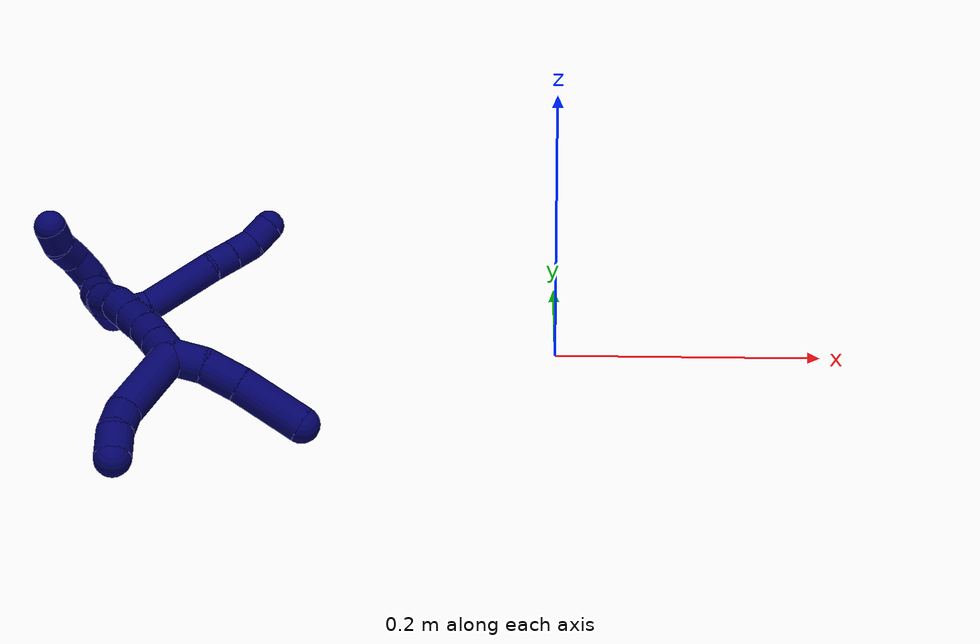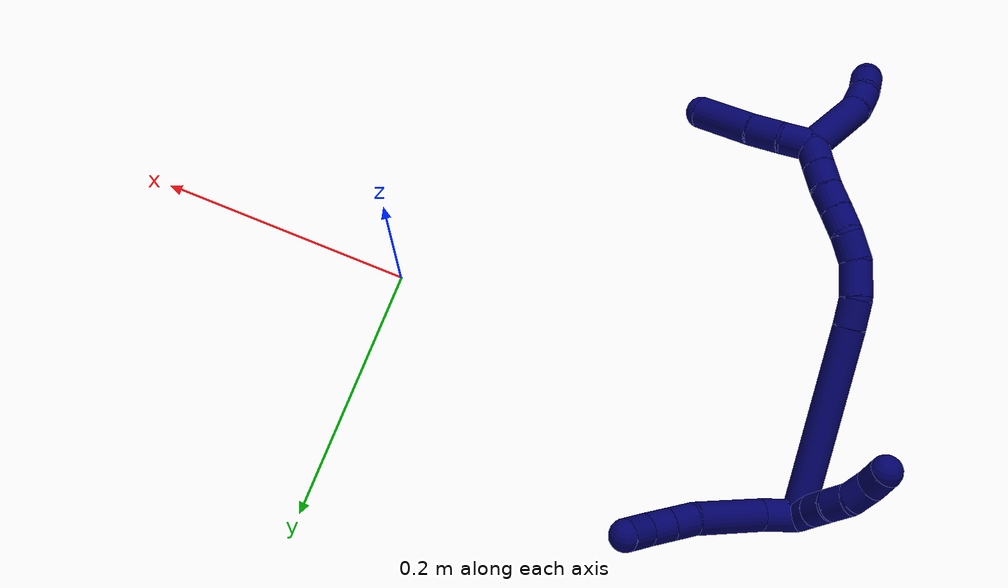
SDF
<sdf version="1.7">
 <world name="default">
  <model name="7">
   <static>0</static>
   <link name="7">
    <collision name="collision-cylinder-e_1_2_8">
     <pose>-0.014492 -0.000851 -0.00073 2.27944 -1.49358 -2.21929</pose>
     <geometry><cylinder><radius>0.0125</radius><length>0.02907</length></cylinder></geometry>
     <surface>
      <friction><ode><mu>1.16</mu><mu2>1.16</mu2><slip1>0</slip1><slip2>0</slip2></ode></friction>
      <contact><ode><kp>1e+06</kp><kd>1</kd><max_vel>0</max_vel><min_depth>0.001</min_depth></ode></contact>
     </surface>
    </collision>
    <visual name="visual-cylinder-e_1_2_8">
     <pose>-0.014492 -0.000851 -0.00073 2.27944 -1.49358 -2.21929</pose>
     <geometry><cylinder><radius>0.0125</radius><length>0.02907</length></cylinder></geometry>
     <material><ambient>0.003922 0 0.403922 1</ambient></material>
    </visual>
    <collision name="collision-cylinder-e_2_8_9">
     <pose>-0.057497 0.003812 -0.008296 -2.46283 -1.27198 2.24954</pose>
     <geometry><cylinder><radius>0.0125</radius><length>0.059672</length></cylinder></geometry>
     <surface>
      <friction><ode><mu>1.16</mu><mu2>1.16</mu2><slip1>0</slip1><slip2>0</slip2></ode></friction>
      <contact><ode><kp>1e+06</kp><kd>1</kd><max_vel>0</max_vel><min_depth>0.001</min_depth></ode></contact>
     </surface>
    </collision>
    <visual name="visual-cylinder-e_2_8_9">
     <pose>-0.057497 0.003812 -0.008296 -2.46283 -1.27198 2.24954</pose>
     <geometry><cylinder><radius>0.0125</radius><length>0.059672</length></cylinder></geometry>
     <material><ambient>0.003922 0 0.403922 1</ambient></material>
    </visual>
    <collision name="collision-cylinder-e_3_9_10">
     <pose>-0.095713 0.011694 -0.015706 -1.80824 -1.3248 1.56199</pose>
     <geometry><cylinder><radius>0.0125</radius><length>0.020006</length></cylinder></geometry>
     <surface>
      <friction><ode><mu>1.16</mu><mu2>1.16</mu2><slip1>0</slip1><slip2>0</slip2></ode></friction>
      <contact><ode><kp>1e+06</kp><kd>1</kd><max_vel>0</max_vel><min_depth>0.001</min_depth></ode></contact>
     </surface>
    </collision>
    <visual name="visual-cylinder-e_3_9_10">
     <pose>-0.095713 0.011694 -0.015706 -1.80824 -1.3248 1.56199</pose>
     <geometry><cylinder><radius>0.0125</radius><length>0.020006</length></cylinder></geometry>
     <material><ambient>0.003922 0 0.403922 1</ambient></material>
    </visual>
    <collision name="collision-cylinder-e_4_10_11">
     <pose>-0.115182 0.016551 -0.017011 -1.85705 -1.31114 1.59841</pose>
     <geometry><cylinder><radius>0.0125</radius><length>0.020212</length></cylinder></geometry>
     <surface>
      <friction><ode><mu>1.16</mu><mu2>1.16</mu2><slip1>0</slip1><slip2>0</slip2></ode></friction>
      <contact><ode><kp>1e+06</kp><kd>1</kd><max_vel>0</max_vel><min_depth>0.001</min_depth></ode></contact>
     </surface>
    </collision>
    <visual name="visual-cylinder-e_4_10_11">
     <pose>-0.115182 0.016551 -0.017011 -1.85705 -1.31114 1.59841</pose>
     <geometry><cylinder><radius>0.0125</radius><length>0.020212</length></cylinder></geometry>
     <material><ambient>0.003922 0 0.403922 1</ambient></material>
    </visual>
    <collision name="collision-cylinder-e_5_11_6">
     <pose>-0.134025 0.023433 -0.020744 -2.16991 -1.04059 1.6523</pose>
     <geometry><cylinder><radius>0.0125</radius><length>0.02104</length></cylinder></geometry>
     <surface>
      <friction><ode><mu>1.16</mu><mu2>1.16</mu2><slip1>0</slip1><slip2>0</slip2></ode></friction>
      <contact><ode><kp>1e+06</kp><kd>1</kd><max_vel>0</max_vel><min_depth>0.001</min_depth></ode></contact>
     </surface>
    </collision>
    <visual name="visual-cylinder-e_5_11_6">
     <pose>-0.134025 0.023433 -0.020744 -2.16991 -1.04059 1.6523</pose>
     <geometry><cylinder><radius>0.0125</radius><length>0.02104</length></cylinder></geometry>
     <material><ambient>0.003922 0 0.403922 1</ambient></material>
    </visual>
    <collision name="collision-cylinder-e_1_2_12">
     <pose>0.002987 0.005094 -0.00807 -2.57857 0.303341 -0.972413</pose>
     <geometry><cylinder><radius>0.0125</radius><length>0.02</length></cylinder></geometry>
     <surface>
      <friction><ode><mu>1.16</mu><mu2>1.16</mu2><slip1>0</slip1><slip2>0</slip2></ode></friction>
      <contact><ode><kp>1e+06</kp><kd>1</kd><max_vel>0</max_vel><min_depth>0.001</min_depth></ode></contact>
     </surface>
    </collision>
    <visual name="visual-cylinder-e_1_2_12">
     <pose>0.002987 0.005094 -0.00807 -2.57857 0.303341 -0.972413</pose>
     <geometry><cylinder><radius>0.0125</radius><length>0.02</length></cylinder></geometry>
     <material><ambient>0.003922 0 0.403922 1</ambient></material>
    </visual>
    <collision name="collision-cylinder-e_2_12_13">
     <pose>0.009121 0.015293 -0.024143 -2.5737 0.320104 -1.01054</pose>
     <geometry><cylinder><radius>0.0125</radius><length>0.02</length></cylinder></geometry>
     <surface>
      <friction><ode><mu>1.16</mu><mu2>1.16</mu2><slip1>0</slip1><slip2>0</slip2></ode></friction>
      <contact><ode><kp>1e+06</kp><kd>1</kd><max_vel>0</max_vel><min_depth>0.001</min_depth></ode></contact>
     </surface>
    </collision>
    <visual name="visual-cylinder-e_2_12_13">
     <pose>0.009121 0.015293 -0.024143 -2.5737 0.320104 -1.01054</pose>
     <geometry><cylinder><radius>0.0125</radius><length>0.02</length></cylinder></geometry>
     <material><ambient>0.003922 0 0.403922 1</ambient></material>
    </visual>
    <collision name="collision-cylinder-e_3_13_14">
     <pose>0.017134 0.024832 -0.039673 -2.60936 0.508192 -1.52244</pose>
     <geometry><cylinder><radius>0.0125</radius><length>0.02</length></cylinder></geometry>
     <surface>
      <friction><ode><mu>1.16</mu><mu2>1.16</mu2><slip1>0</slip1><slip2>0</slip2></ode></friction>
      <contact><ode><kp>1e+06</kp><kd>1</kd><max_vel>0</max_vel><min_depth>0.001</min_depth></ode></contact>
     </surface>
    </collision>
    <visual name="visual-cylinder-e_3_13_14">
     <pose>0.017134 0.024832 -0.039673 -2.60936 0.508192 -1.52244</pose>
     <geometry><cylinder><radius>0.0125</radius><length>0.02</length></cylinder></geometry>
     <material><ambient>0.003922 0 0.403922 1</ambient></material>
    </visual>
    <collision name="collision-cylinder-e_4_14_15">
     <pose>0.027528 0.030554 -0.055433 -2.98632 0.585729 -2.63662</pose>
     <geometry><cylinder><radius>0.0125</radius><length>0.02</length></cylinder></geometry>
     <surface>
      <friction><ode><mu>1.16</mu><mu2>1.16</mu2><slip1>0</slip1><slip2>0</slip2></ode></friction>
      <contact><ode><kp>1e+06</kp><kd>1</kd><max_vel>0</max_vel><min_depth>0.001</min_depth></ode></contact>
     </surface>
    </collision>
    <visual name="visual-cylinder-e_4_14_15">
     <pose>0.027528 0.030554 -0.055433 -2.98632 0.585729 -2.63662</pose>
     <geometry><cylinder><radius>0.0125</radius><length>0.02</length></cylinder></geometry>
     <material><ambient>0.003922 0 0.403922 1</ambient></material>
    </visual>
    <collision name="collision-cylinder-e_5_15_5">
     <pose>0.035668 0.034337 -0.072991 -2.8802 0.264312 -1.58202</pose>
     <geometry><cylinder><radius>0.0125</radius><length>0.02</length></cylinder></geometry>
     <surface>
      <friction><ode><mu>1.16</mu><mu2>1.16</mu2><slip1>0</slip1><slip2>0</slip2></ode></friction>
      <contact><ode><kp>1e+06</kp><kd>1</kd><max_vel>0</max_vel><min_depth>0.001</min_depth></ode></contact>
     </surface>
    </collision>
    <visual name="visual-cylinder-e_5_15_5">
     <pose>0.035668 0.034337 -0.072991 -2.8802 0.264312 -1.58202</pose>
     <geometry><cylinder><radius>0.0125</radius><length>0.02</length></cylinder></geometry>
     <material><ambient>0.003922 0 0.403922 1</ambient></material>
    </visual>
    <collision name="collision-cylinder-e_1_2_16">
     <pose>0.018525 -0.035514 -0.062222 2.62295 0.253028 0.894126</pose>
     <geometry><cylinder><radius>0.0125</radius><length>0.147999</length></cylinder></geometry>
     <surface>
      <friction><ode><mu>1.16</mu><mu2>1.16</mu2><slip1>0</slip1><slip2>0</slip2></ode></friction>
      <contact><ode><kp>1e+06</kp><kd>1</kd><max_vel>0</max_vel><min_depth>0.001</min_depth></ode></contact>
     </surface>
    </collision>
    <visual name="visual-cylinder-e_1_2_16">
     <pose>0.018525 -0.035514 -0.062222 2.62295 0.253028 0.894126</pose>
     <geometry><cylinder><radius>0.0125</radius><length>0.147999</length></cylinder></geometry>
     <material><ambient>0.003922 0 0.403922 1</ambient></material>
    </visual>
    <collision name="collision-cylinder-e_2_16_17">
     <pose>0.039519 -0.076644 -0.133612 2.59201 0.225792 0.764728</pose>
     <geometry><cylinder><radius>0.0125</radius><length>0.022064</length></cylinder></geometry>
     <surface>
      <friction><ode><mu>1.16</mu><mu2>1.16</mu2><slip1>0</slip1><slip2>0</slip2></ode></friction>
      <contact><ode><kp>1e+06</kp><kd>1</kd><max_vel>0</max_vel><min_depth>0.001</min_depth></ode></contact>
     </surface>
    </collision>
    <visual name="visual-cylinder-e_2_16_17">
     <pose>0.039519 -0.076644 -0.133612 2.59201 0.225792 0.764728</pose>
     <geometry><cylinder><radius>0.0125</radius><length>0.022064</length></cylinder></geometry>
     <material><ambient>0.003922 0 0.403922 1</ambient></material>
    </visual>
    <collision name="collision-cylinder-e_3_17_18">
     <pose>0.043399 -0.092666 -0.151695 2.27916 0.102551 0.222169</pose>
     <geometry><cylinder><radius>0.0125</radius><length>0.027548</length></cylinder></geometry>
     <surface>
      <friction><ode><mu>1.16</mu><mu2>1.16</mu2><slip1>0</slip1><slip2>0</slip2></ode></friction>
      <contact><ode><kp>1e+06</kp><kd>1</kd><max_vel>0</max_vel><min_depth>0.001</min_depth></ode></contact>
     </surface>
    </collision>
    <visual name="visual-cylinder-e_3_17_18">
     <pose>0.043399 -0.092666 -0.151695 2.27916 0.102551 0.222169</pose>
     <geometry><cylinder><radius>0.0125</radius><length>0.027548</length></cylinder></geometry>
     <material><ambient>0.003922 0 0.403922 1</ambient></material>
    </visual>
    <collision name="collision-cylinder-e_4_18_19">
     <pose>0.042474 -0.111497 -0.167282 2.24061 -0.21392 -0.436902</pose>
     <geometry><cylinder><radius>0.0125</radius><length>0.021997</length></cylinder></geometry>
     <surface>
      <friction><ode><mu>1.16</mu><mu2>1.16</mu2><slip1>0</slip1><slip2>0</slip2></ode></friction>
      <contact><ode><kp>1e+06</kp><kd>1</kd><max_vel>0</max_vel><min_depth>0.001</min_depth></ode></contact>
     </surface>
    </collision>
    <visual name="visual-cylinder-e_4_18_19">
     <pose>0.042474 -0.111497 -0.167282 2.24061 -0.21392 -0.436902</pose>
     <geometry><cylinder><radius>0.0125</radius><length>0.021997</length></cylinder></geometry>
     <material><ambient>0.003922 0 0.403922 1</ambient></material>
    </visual>
    <collision name="collision-cylinder-e_5_19_20">
     <pose>0.038508 -0.129173 -0.177465 1.93349 -0.163382 -0.236175</pose>
     <geometry><cylinder><radius>0.0125</radius><length>0.020055</length></cylinder></geometry>
     <surface>
      <friction><ode><mu>1.16</mu><mu2>1.16</mu2><slip1>0</slip1><slip2>0</slip2></ode></friction>
      <contact><ode><kp>1e+06</kp><kd>1</kd><max_vel>0</max_vel><min_depth>0.001</min_depth></ode></contact>
     </surface>
    </collision>
    <visual name="visual-cylinder-e_5_19_20">
     <pose>0.038508 -0.129173 -0.177465 1.93349 -0.163382 -0.236175</pose>
     <geometry><cylinder><radius>0.0125</radius><length>0.020055</length></cylinder></geometry>
     <material><ambient>0.003922 0 0.403922 1</ambient></material>
    </visual>
    <collision name="collision-cylinder-e_6_20_21">
     <pose>0.034999 -0.147702 -0.184667 1.94941 -0.185886 -0.273085</pose>
     <geometry><cylinder><radius>0.0125</radius><length>0.020324</length></cylinder></geometry>
     <surface>
      <friction><ode><mu>1.16</mu><mu2>1.16</mu2><slip1>0</slip1><slip2>0</slip2></ode></friction>
      <contact><ode><kp>1e+06</kp><kd>1</kd><max_vel>0</max_vel><min_depth>0.001</min_depth></ode></contact>
     </surface>
    </collision>
    <visual name="visual-cylinder-e_6_20_21">
     <pose>0.034999 -0.147702 -0.184667 1.94941 -0.185886 -0.273085</pose>
     <geometry><cylinder><radius>0.0125</radius><length>0.020324</length></cylinder></geometry>
     <material><ambient>0.003922 0 0.403922 1</ambient></material>
    </visual>
    <collision name="collision-cylinder-e_7_21_22">
     <pose>0.032428 -0.166381 -0.191713 1.91359 -0.069335 -0.098323</pose>
     <geometry><cylinder><radius>0.0125</radius><length>0.020008</length></cylinder></geometry>
     <surface>
      <friction><ode><mu>1.16</mu><mu2>1.16</mu2><slip1>0</slip1><slip2>0</slip2></ode></friction>
      <contact><ode><kp>1e+06</kp><kd>1</kd><max_vel>0</max_vel><min_depth>0.001</min_depth></ode></contact>
     </surface>
    </collision>
    <visual name="visual-cylinder-e_7_21_22">
     <pose>0.032428 -0.166381 -0.191713 1.91359 -0.069335 -0.098323</pose>
     <geometry><cylinder><radius>0.0125</radius><length>0.020008</length></cylinder></geometry>
     <material><ambient>0.003922 0 0.403922 1</ambient></material>
    </visual>
    <collision name="collision-cylinder-e_8_22_1">
     <pose>0.031157 -0.185142 -0.198543 1.92636 -0.057835 -0.083147</pose>
     <geometry><cylinder><radius>0.0125</radius><length>0.020005</length></cylinder></geometry>
     <surface>
      <friction><ode><mu>1.16</mu><mu2>1.16</mu2><slip1>0</slip1><slip2>0</slip2></ode></friction>
      <contact><ode><kp>1e+06</kp><kd>1</kd><max_vel>0</max_vel><min_depth>0.001</min_depth></ode></contact>
     </surface>
    </collision>
    <visual name="visual-cylinder-e_8_22_1">
     <pose>0.031157 -0.185142 -0.198543 1.92636 -0.057835 -0.083147</pose>
     <geometry><cylinder><radius>0.0125</radius><length>0.020005</length></cylinder></geometry>
     <material><ambient>0.003922 0 0.403922 1</ambient></material>
    </visual>
    <collision name="collision-cylinder-e_1_1_23">
     <pose>0.053686 -0.212818 -0.2055 1.75856 0.891898 1.04736</pose>
     <geometry><cylinder><radius>0.0125</radius><length>0.05938</length></cylinder></geometry>
     <surface>
      <friction><ode><mu>1.16</mu><mu2>1.16</mu2><slip1>0</slip1><slip2>0</slip2></ode></friction>
      <contact><ode><kp>1e+06</kp><kd>1</kd><max_vel>0</max_vel><min_depth>0.001</min_depth></ode></contact>
     </surface>
    </collision>
    <visual name="visual-cylinder-e_1_1_23">
     <pose>0.053686 -0.212818 -0.2055 1.75856 0.891898 1.04736</pose>
     <geometry><cylinder><radius>0.0125</radius><length>0.05938</length></cylinder></geometry>
     <material><ambient>0.003922 0 0.403922 1</ambient></material>
    </visual>
    <collision name="collision-cylinder-e_2_23_24">
     <pose>0.082436 -0.239276 -0.211296 1.84797 0.588041 0.762661</pose>
     <geometry><cylinder><radius>0.0125</radius><length>0.020346</length></cylinder></geometry>
     <surface>
      <friction><ode><mu>1.16</mu><mu2>1.16</mu2><slip1>0</slip1><slip2>0</slip2></ode></friction>
      <contact><ode><kp>1e+06</kp><kd>1</kd><max_vel>0</max_vel><min_depth>0.001</min_depth></ode></contact>
     </surface>
    </collision>
    <visual name="visual-cylinder-e_2_23_24">
     <pose>0.082436 -0.239276 -0.211296 1.84797 0.588041 0.762661</pose>
     <geometry><cylinder><radius>0.0125</radius><length>0.020346</length></cylinder></geometry>
     <material><ambient>0.003922 0 0.403922 1</ambient></material>
    </visual>
    <collision name="collision-cylinder-e_3_24_4">
     <pose>0.092231 -0.256659 -0.213911 1.60312 0.422029 0.435469</pose>
     <geometry><cylinder><radius>0.0125</radius><length>0.020273</length></cylinder></geometry>
     <surface>
      <friction><ode><mu>1.16</mu><mu2>1.16</mu2><slip1>0</slip1><slip2>0</slip2></ode></friction>
      <contact><ode><kp>1e+06</kp><kd>1</kd><max_vel>0</max_vel><min_depth>0.001</min_depth></ode></contact>
     </surface>
    </collision>
    <visual name="visual-cylinder-e_3_24_4">
     <pose>0.092231 -0.256659 -0.213911 1.60312 0.422029 0.435469</pose>
     <geometry><cylinder><radius>0.0125</radius><length>0.020273</length></cylinder></geometry>
     <material><ambient>0.003922 0 0.403922 1</ambient></material>
    </visual>
    <collision name="collision-cylinder-e_1_1_25">
     <pose>0.021047 -0.201152 -0.201127 1.43731 -0.957494 -0.85232</pose>
     <geometry><cylinder><radius>0.0125</radius><length>0.023311</length></cylinder></geometry>
     <surface>
      <friction><ode><mu>1.16</mu><mu2>1.16</mu2><slip1>0</slip1><slip2>0</slip2></ode></friction>
      <contact><ode><kp>1e+06</kp><kd>1</kd><max_vel>0</max_vel><min_depth>0.001</min_depth></ode></contact>
     </surface>
    </collision>
    <visual name="visual-cylinder-e_1_1_25">
     <pose>0.021047 -0.201152 -0.201127 1.43731 -0.957494 -0.85232</pose>
     <geometry><cylinder><radius>0.0125</radius><length>0.023311</length></cylinder></geometry>
     <material><ambient>0.003922 0 0.403922 1</ambient></material>
    </visual>
    <collision name="collision-cylinder-e_2_25_26">
     <pose>0.002432 -0.217471 -0.197697 1.31421 -0.737589 -0.579533</pose>
     <geometry><cylinder><radius>0.0125</radius><length>0.027016</length></cylinder></geometry>
     <surface>
      <friction><ode><mu>1.16</mu><mu2>1.16</mu2><slip1>0</slip1><slip2>0</slip2></ode></friction>
      <contact><ode><kp>1e+06</kp><kd>1</kd><max_vel>0</max_vel><min_depth>0.001</min_depth></ode></contact>
     </surface>
    </collision>
    <visual name="visual-cylinder-e_2_25_26">
     <pose>0.002432 -0.217471 -0.197697 1.31421 -0.737589 -0.579533</pose>
     <geometry><cylinder><radius>0.0125</radius><length>0.027016</length></cylinder></geometry>
     <material><ambient>0.003922 0 0.403922 1</ambient></material>
    </visual>
    <collision name="collision-cylinder-e_3_26_3">
     <pose>-0.021342 -0.246609 -0.190465 1.33418 -0.632841 -0.504714</pose>
     <geometry><cylinder><radius>0.0125</radius><length>0.049672</length></cylinder></geometry>
     <surface>
      <friction><ode><mu>1.16</mu><mu2>1.16</mu2><slip1>0</slip1><slip2>0</slip2></ode></friction>
      <contact><ode><kp>1e+06</kp><kd>1</kd><max_vel>0</max_vel><min_depth>0.001</min_depth></ode></contact>
     </surface>
    </collision>
    <visual name="visual-cylinder-e_3_26_3">
     <pose>-0.021342 -0.246609 -0.190465 1.33418 -0.632841 -0.504714</pose>
     <geometry><cylinder><radius>0.0125</radius><length>0.049672</length></cylinder></geometry>
     <material><ambient>0.003922 0 0.403922 1</ambient></material>
    </visual>
    <collision name="collision-sphere-3">
     <pose>-0.036031 -0.266078 -0.185771 0 -0 0</pose>
     <geometry><sphere><radius>0.0125</radius></sphere></geometry>
     <surface>
      <friction><ode><mu>1.16</mu><mu2>1.16</mu2><slip1>0</slip1><slip2>0</slip2></ode></friction>
      <contact><ode><kp>1e+06</kp><kd>1</kd><max_vel>0</max_vel><min_depth>0.001</min_depth></ode></contact>
     </surface>
    </collision>
    <visual name="visual-sphere-3">
     <pose>-0.036031 -0.266078 -0.185771 0 -0 0</pose>
     <geometry><sphere><radius>0.0125</radius></sphere></geometry>
     <material><ambient>0.003922 0 0.403922 1</ambient></material>
    </visual>
    <collision name="collision-sphere-26">
     <pose>-0.006653 -0.227141 -0.19516 0 -0 0</pose>
     <geometry><sphere><radius>0.0125</radius></sphere></geometry>
     <surface>
      <friction><ode><mu>1.16</mu><mu2>1.16</mu2><slip1>0</slip1><slip2>0</slip2></ode></friction>
      <contact><ode><kp>1e+06</kp><kd>1</kd><max_vel>0</max_vel><min_depth>0.001</min_depth></ode></contact>
     </surface>
    </collision>
    <visual name="visual-sphere-26">
     <pose>-0.006653 -0.227141 -0.19516 0 -0 0</pose>
     <geometry><sphere><radius>0.0125</radius></sphere></geometry>
     <material><ambient>0.003922 0 0.403922 1</ambient></material>
    </visual>
    <collision name="collision-sphere-25">
     <pose>0.011516 -0.207801 -0.200234 0 -0 0</pose>
     <geometry><sphere><radius>0.0125</radius></sphere></geometry>
     <surface>
      <friction><ode><mu>1.16</mu><mu2>1.16</mu2><slip1>0</slip1><slip2>0</slip2></ode></friction>
      <contact><ode><kp>1e+06</kp><kd>1</kd><max_vel>0</max_vel><min_depth>0.001</min_depth></ode></contact>
     </surface>
    </collision>
    <visual name="visual-sphere-25">
     <pose>0.011516 -0.207801 -0.200234 0 -0 0</pose>
     <geometry><sphere><radius>0.0125</radius></sphere></geometry>
     <material><ambient>0.003922 0 0.403922 1</ambient></material>
    </visual>
    <collision name="collision-sphere-4">
     <pose>0.096383 -0.265902 -0.21421 0 -0 0</pose>
     <geometry><sphere><radius>0.0125</radius></sphere></geometry>
     <surface>
      <friction><ode><mu>1.16</mu><mu2>1.16</mu2><slip1>0</slip1><slip2>0</slip2></ode></friction>
      <contact><ode><kp>1e+06</kp><kd>1</kd><max_vel>0</max_vel><min_depth>0.001</min_depth></ode></contact>
     </surface>
    </collision>
    <visual name="visual-sphere-4">
     <pose>0.096383 -0.265902 -0.21421 0 -0 0</pose>
     <geometry><sphere><radius>0.0125</radius></sphere></geometry>
     <material><ambient>0.003922 0 0.403922 1</ambient></material>
    </visual>
    <collision name="collision-sphere-24">
     <pose>0.088079 -0.247417 -0.213612 0 -0 0</pose>
     <geometry><sphere><radius>0.0125</radius></sphere></geometry>
     <surface>
      <friction><ode><mu>1.16</mu><mu2>1.16</mu2><slip1>0</slip1><slip2>0</slip2></ode></friction>
      <contact><ode><kp>1e+06</kp><kd>1</kd><max_vel>0</max_vel><min_depth>0.001</min_depth></ode></contact>
     </surface>
    </collision>
    <visual name="visual-sphere-24">
     <pose>0.088079 -0.247417 -0.213612 0 -0 0</pose>
     <geometry><sphere><radius>0.0125</radius></sphere></geometry>
     <material><ambient>0.003922 0 0.403922 1</ambient></material>
    </visual>
    <collision name="collision-sphere-23">
     <pose>0.076792 -0.231134 -0.20898 0 -0 0</pose>
     <geometry><sphere><radius>0.0125</radius></sphere></geometry>
     <surface>
      <friction><ode><mu>1.16</mu><mu2>1.16</mu2><slip1>0</slip1><slip2>0</slip2></ode></friction>
      <contact><ode><kp>1e+06</kp><kd>1</kd><max_vel>0</max_vel><min_depth>0.001</min_depth></ode></contact>
     </surface>
    </collision>
    <visual name="visual-sphere-23">
     <pose>0.076792 -0.231134 -0.20898 0 -0 0</pose>
     <geometry><sphere><radius>0.0125</radius></sphere></geometry>
     <material><ambient>0.003922 0 0.403922 1</ambient></material>
    </visual>
    <collision name="collision-sphere-1">
     <pose>0.030579 -0.194503 -0.20202 0 -0 0</pose>
     <geometry><sphere><radius>0.0125</radius></sphere></geometry>
     <surface>
      <friction><ode><mu>1.16</mu><mu2>1.16</mu2><slip1>0</slip1><slip2>0</slip2></ode></friction>
      <contact><ode><kp>1e+06</kp><kd>1</kd><max_vel>0</max_vel><min_depth>0.001</min_depth></ode></contact>
     </surface>
    </collision>
    <visual name="visual-sphere-1">
     <pose>0.030579 -0.194503 -0.20202 0 -0 0</pose>
     <geometry><sphere><radius>0.0125</radius></sphere></geometry>
     <material><ambient>0.003922 0 0.403922 1</ambient></material>
    </visual>
    <collision name="collision-sphere-22">
     <pose>0.031735 -0.175781 -0.195067 0 -0 0</pose>
     <geometry><sphere><radius>0.0125</radius></sphere></geometry>
     <surface>
      <friction><ode><mu>1.16</mu><mu2>1.16</mu2><slip1>0</slip1><slip2>0</slip2></ode></friction>
      <contact><ode><kp>1e+06</kp><kd>1</kd><max_vel>0</max_vel><min_depth>0.001</min_depth></ode></contact>
     </surface>
    </collision>
    <visual name="visual-sphere-22">
     <pose>0.031735 -0.175781 -0.195067 0 -0 0</pose>
     <geometry><sphere><radius>0.0125</radius></sphere></geometry>
     <material><ambient>0.003922 0 0.403922 1</ambient></material>
    </visual>
    <collision name="collision-sphere-21">
     <pose>0.033121 -0.156982 -0.188358 0 -0 0</pose>
     <geometry><sphere><radius>0.0125</radius></sphere></geometry>
     <surface>
      <friction><ode><mu>1.16</mu><mu2>1.16</mu2><slip1>0</slip1><slip2>0</slip2></ode></friction>
      <contact><ode><kp>1e+06</kp><kd>1</kd><max_vel>0</max_vel><min_depth>0.001</min_depth></ode></contact>
     </surface>
    </collision>
    <visual name="visual-sphere-21">
     <pose>0.033121 -0.156982 -0.188358 0 -0 0</pose>
     <geometry><sphere><radius>0.0125</radius></sphere></geometry>
     <material><ambient>0.003922 0 0.403922 1</ambient></material>
    </visual>
    <collision name="collision-sphere-6">
     <pose>-0.1431 0.027827 -0.023744 0 -0 0</pose>
     <geometry><sphere><radius>0.0125</radius></sphere></geometry>
     <surface>
      <friction><ode><mu>1.16</mu><mu2>1.16</mu2><slip1>0</slip1><slip2>0</slip2></ode></friction>
      <contact><ode><kp>1e+06</kp><kd>1</kd><max_vel>0</max_vel><min_depth>0.001</min_depth></ode></contact>
     </surface>
    </collision>
    <visual name="visual-sphere-6">
     <pose>-0.1431 0.027827 -0.023744 0 -0 0</pose>
     <geometry><sphere><radius>0.0125</radius></sphere></geometry>
     <material><ambient>0.003922 0 0.403922 1</ambient></material>
    </visual>
    <collision name="collision-sphere-11">
     <pose>-0.124949 0.01904 -0.017744 0 -0 0</pose>
     <geometry><sphere><radius>0.0125</radius></sphere></geometry>
     <surface>
      <friction><ode><mu>1.16</mu><mu2>1.16</mu2><slip1>0</slip1><slip2>0</slip2></ode></friction>
      <contact><ode><kp>1e+06</kp><kd>1</kd><max_vel>0</max_vel><min_depth>0.001</min_depth></ode></contact>
     </surface>
    </collision>
    <visual name="visual-sphere-11">
     <pose>-0.124949 0.01904 -0.017744 0 -0 0</pose>
     <geometry><sphere><radius>0.0125</radius></sphere></geometry>
     <material><ambient>0.003922 0 0.403922 1</ambient></material>
    </visual>
    <collision name="collision-sphere-10">
     <pose>-0.105415 0.014062 -0.016279 0 -0 0</pose>
     <geometry><sphere><radius>0.0125</radius></sphere></geometry>
     <surface>
      <friction><ode><mu>1.16</mu><mu2>1.16</mu2><slip1>0</slip1><slip2>0</slip2></ode></friction>
      <contact><ode><kp>1e+06</kp><kd>1</kd><max_vel>0</max_vel><min_depth>0.001</min_depth></ode></contact>
     </surface>
    </collision>
    <visual name="visual-sphere-10">
     <pose>-0.105415 0.014062 -0.016279 0 -0 0</pose>
     <geometry><sphere><radius>0.0125</radius></sphere></geometry>
     <material><ambient>0.003922 0 0.403922 1</ambient></material>
    </visual>
    <collision name="collision-sphere-9">
     <pose>-0.086011 0.009327 -0.015133 0 -0 0</pose>
     <geometry><sphere><radius>0.0125</radius></sphere></geometry>
     <surface>
      <friction><ode><mu>1.16</mu><mu2>1.16</mu2><slip1>0</slip1><slip2>0</slip2></ode></friction>
      <contact><ode><kp>1e+06</kp><kd>1</kd><max_vel>0</max_vel><min_depth>0.001</min_depth></ode></contact>
     </surface>
    </collision>
    <visual name="visual-sphere-9">
     <pose>-0.086011 0.009327 -0.015133 0 -0 0</pose>
     <geometry><sphere><radius>0.0125</radius></sphere></geometry>
     <material><ambient>0.003922 0 0.403922 1</ambient></material>
    </visual>
    <collision name="collision-sphere-2">
     <geometry><sphere><radius>0.0125</radius></sphere></geometry>
     <surface>
      <friction><ode><mu>1.16</mu><mu2>1.16</mu2><slip1>0</slip1><slip2>0</slip2></ode></friction>
      <contact><ode><kp>1e+06</kp><kd>1</kd><max_vel>0</max_vel><min_depth>0.001</min_depth></ode></contact>
     </surface>
    </collision>
    <visual name="visual-sphere-2">
     <geometry><sphere><radius>0.0125</radius></sphere></geometry>
     <material><ambient>0.003922 0 0.403922 1</ambient></material>
    </visual>
    <collision name="collision-sphere-19">
     <pose>0.040139 -0.119923 -0.173955 0 -0 0</pose>
     <geometry><sphere><radius>0.0125</radius></sphere></geometry>
     <surface>
      <friction><ode><mu>1.16</mu><mu2>1.16</mu2><slip1>0</slip1><slip2>0</slip2></ode></friction>
      <contact><ode><kp>1e+06</kp><kd>1</kd><max_vel>0</max_vel><min_depth>0.001</min_depth></ode></contact>
     </surface>
    </collision>
    <visual name="visual-sphere-19">
     <pose>0.040139 -0.119923 -0.173955 0 -0 0</pose>
     <geometry><sphere><radius>0.0125</radius></sphere></geometry>
     <material><ambient>0.003922 0 0.403922 1</ambient></material>
    </visual>
    <collision name="collision-sphere-8">
     <pose>-0.028983 -0.001703 -0.001459 0 -0 0</pose>
     <geometry><sphere><radius>0.0125</radius></sphere></geometry>
     <surface>
      <friction><ode><mu>1.16</mu><mu2>1.16</mu2><slip1>0</slip1><slip2>0</slip2></ode></friction>
      <contact><ode><kp>1e+06</kp><kd>1</kd><max_vel>0</max_vel><min_depth>0.001</min_depth></ode></contact>
     </surface>
    </collision>
    <visual name="visual-sphere-8">
     <pose>-0.028983 -0.001703 -0.001459 0 -0 0</pose>
     <geometry><sphere><radius>0.0125</radius></sphere></geometry>
     <material><ambient>0.003922 0 0.403922 1</ambient></material>
    </visual>
    <collision name="collision-sphere-12">
     <pose>0.005974 0.010187 -0.016141 0 -0 0</pose>
     <geometry><sphere><radius>0.0125</radius></sphere></geometry>
     <surface>
      <friction><ode><mu>1.16</mu><mu2>1.16</mu2><slip1>0</slip1><slip2>0</slip2></ode></friction>
      <contact><ode><kp>1e+06</kp><kd>1</kd><max_vel>0</max_vel><min_depth>0.001</min_depth></ode></contact>
     </surface>
    </collision>
    <visual name="visual-sphere-12">
     <pose>0.005974 0.010187 -0.016141 0 -0 0</pose>
     <geometry><sphere><radius>0.0125</radius></sphere></geometry>
     <material><ambient>0.003922 0 0.403922 1</ambient></material>
    </visual>
    <collision name="collision-sphere-13">
     <pose>0.012268 0.020398 -0.032145 0 -0 0</pose>
     <geometry><sphere><radius>0.0125</radius></sphere></geometry>
     <surface>
      <friction><ode><mu>1.16</mu><mu2>1.16</mu2><slip1>0</slip1><slip2>0</slip2></ode></friction>
      <contact><ode><kp>1e+06</kp><kd>1</kd><max_vel>0</max_vel><min_depth>0.001</min_depth></ode></contact>
     </surface>
    </collision>
    <visual name="visual-sphere-13">
     <pose>0.012268 0.020398 -0.032145 0 -0 0</pose>
     <geometry><sphere><radius>0.0125</radius></sphere></geometry>
     <material><ambient>0.003922 0 0.403922 1</ambient></material>
    </visual>
    <collision name="collision-sphere-14">
     <pose>0.021999 0.029265 -0.047201 0 -0 0</pose>
     <geometry><sphere><radius>0.0125</radius></sphere></geometry>
     <surface>
      <friction><ode><mu>1.16</mu><mu2>1.16</mu2><slip1>0</slip1><slip2>0</slip2></ode></friction>
      <contact><ode><kp>1e+06</kp><kd>1</kd><max_vel>0</max_vel><min_depth>0.001</min_depth></ode></contact>
     </surface>
    </collision>
    <visual name="visual-sphere-14">
     <pose>0.021999 0.029265 -0.047201 0 -0 0</pose>
     <geometry><sphere><radius>0.0125</radius></sphere></geometry>
     <material><ambient>0.003922 0 0.403922 1</ambient></material>
    </visual>
    <collision name="collision-sphere-15">
     <pose>0.033056 0.031842 -0.063666 0 -0 0</pose>
     <geometry><sphere><radius>0.0125</radius></sphere></geometry>
     <surface>
      <friction><ode><mu>1.16</mu><mu2>1.16</mu2><slip1>0</slip1><slip2>0</slip2></ode></friction>
      <contact><ode><kp>1e+06</kp><kd>1</kd><max_vel>0</max_vel><min_depth>0.001</min_depth></ode></contact>
     </surface>
    </collision>
    <visual name="visual-sphere-15">
     <pose>0.033056 0.031842 -0.063666 0 -0 0</pose>
     <geometry><sphere><radius>0.0125</radius></sphere></geometry>
     <material><ambient>0.003922 0 0.403922 1</ambient></material>
    </visual>
    <collision name="collision-sphere-5">
     <pose>0.038281 0.036831 -0.082316 0 -0 0</pose>
     <geometry><sphere><radius>0.0125</radius></sphere></geometry>
     <surface>
      <friction><ode><mu>1.16</mu><mu2>1.16</mu2><slip1>0</slip1><slip2>0</slip2></ode></friction>
      <contact><ode><kp>1e+06</kp><kd>1</kd><max_vel>0</max_vel><min_depth>0.001</min_depth></ode></contact>
     </surface>
    </collision>
    <visual name="visual-sphere-5">
     <pose>0.038281 0.036831 -0.082316 0 -0 0</pose>
     <geometry><sphere><radius>0.0125</radius></sphere></geometry>
     <material><ambient>0.003922 0 0.403922 1</ambient></material>
    </visual>
    <collision name="collision-sphere-16">
     <pose>0.03705 -0.071028 -0.124444 0 -0 0</pose>
     <geometry><sphere><radius>0.0125</radius></sphere></geometry>
     <surface>
      <friction><ode><mu>1.16</mu><mu2>1.16</mu2><slip1>0</slip1><slip2>0</slip2></ode></friction>
      <contact><ode><kp>1e+06</kp><kd>1</kd><max_vel>0</max_vel><min_depth>0.001</min_depth></ode></contact>
     </surface>
    </collision>
    <visual name="visual-sphere-16">
     <pose>0.03705 -0.071028 -0.124444 0 -0 0</pose>
     <geometry><sphere><radius>0.0125</radius></sphere></geometry>
     <material><ambient>0.003922 0 0.403922 1</ambient></material>
    </visual>
    <collision name="collision-sphere-17">
     <pose>0.041989 -0.08226 -0.142781 0 -0 0</pose>
     <geometry><sphere><radius>0.0125</radius></sphere></geometry>
     <surface>
      <friction><ode><mu>1.16</mu><mu2>1.16</mu2><slip1>0</slip1><slip2>0</slip2></ode></friction>
      <contact><ode><kp>1e+06</kp><kd>1</kd><max_vel>0</max_vel><min_depth>0.001</min_depth></ode></contact>
     </surface>
    </collision>
    <visual name="visual-sphere-17">
     <pose>0.041989 -0.08226 -0.142781 0 -0 0</pose>
     <geometry><sphere><radius>0.0125</radius></sphere></geometry>
     <material><ambient>0.003922 0 0.403922 1</ambient></material>
    </visual>
    <collision name="collision-sphere-18">
     <pose>0.044809 -0.103071 -0.160609 0 -0 0</pose>
     <geometry><sphere><radius>0.0125</radius></sphere></geometry>
     <surface>
      <friction><ode><mu>1.16</mu><mu2>1.16</mu2><slip1>0</slip1><slip2>0</slip2></ode></friction>
      <contact><ode><kp>1e+06</kp><kd>1</kd><max_vel>0</max_vel><min_depth>0.001</min_depth></ode></contact>
     </surface>
    </collision>
    <visual name="visual-sphere-18">
     <pose>0.044809 -0.103071 -0.160609 0 -0 0</pose>
     <geometry><sphere><radius>0.0125</radius></sphere></geometry>
     <material><ambient>0.003922 0 0.403922 1</ambient></material>
    </visual>
    <collision name="collision-sphere-20">
     <pose>0.036877 -0.138423 -0.180975 0 -0 0</pose>
     <geometry><sphere><radius>0.0125</radius></sphere></geometry>
     <surface>
      <friction><ode><mu>1.16</mu><mu2>1.16</mu2><slip1>0</slip1><slip2>0</slip2></ode></friction>
      <contact><ode><kp>1e+06</kp><kd>1</kd><max_vel>0</max_vel><min_depth>0.001</min_depth></ode></contact>
     </surface>
    </collision>
    <visual name="visual-sphere-20">
     <pose>0.036877 -0.138423 -0.180975 0 -0 0</pose>
     <geometry><sphere><radius>0.0125</radius></sphere></geometry>
     <material><ambient>0.003922 0 0.403922 1</ambient></material>
    </visual>
    <inertial>
     <pose>0.007552 -0.088846 -0.108108 0 -0 0</pose>
     <mass>0.75</mass>
     <inertia>
      <ixx>0.000403</ixx>
      <ixy>0</ixy>
      <ixz>0</ixz>
      <iyy>0.000112</iyy>
      <iyz>0</iyz>
      <izz>8.7e-05</izz>
     </inertia>
    </inertial>
   </link>
   <pose>-0.350405 0.059777 0.011782 2.51282 0.163995 -2.67027</pose>
  </model>
 </world>
</sdf>
